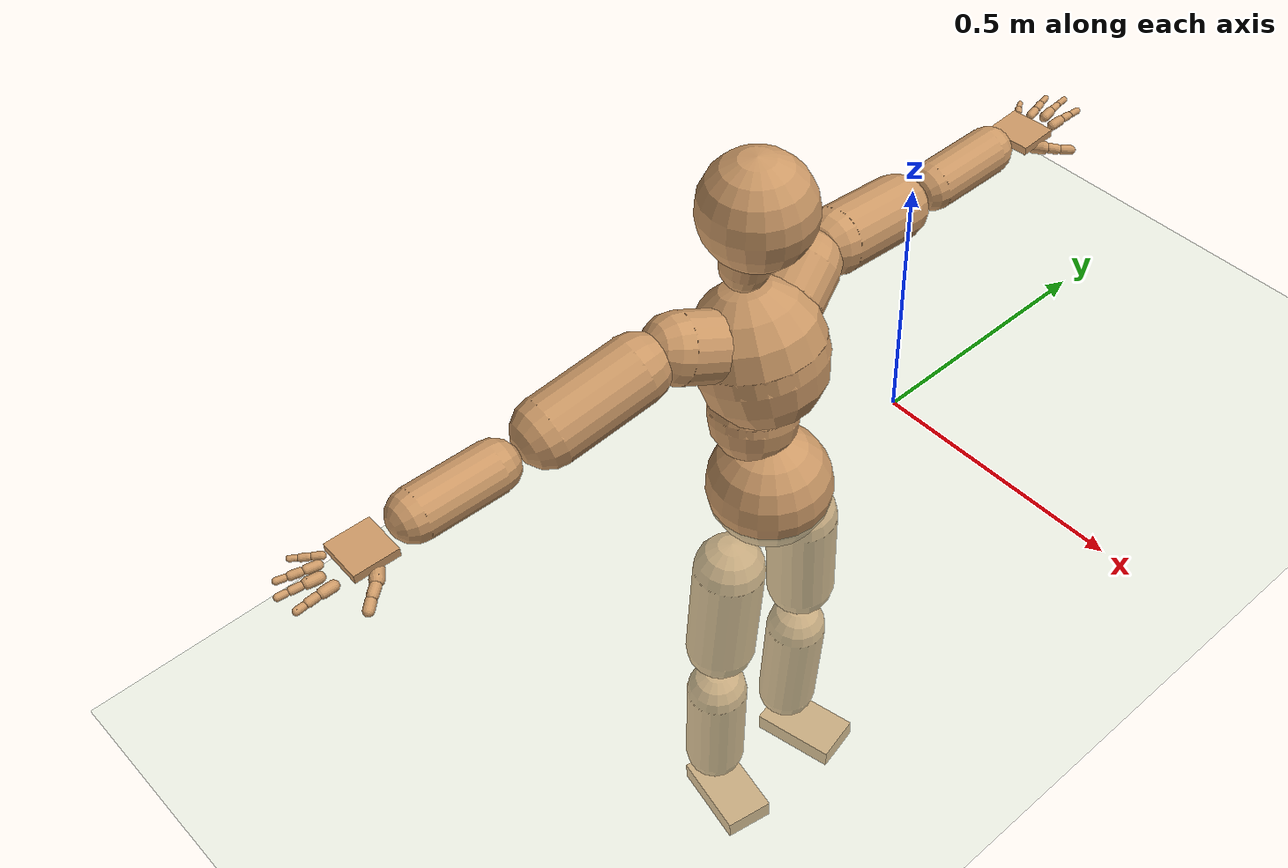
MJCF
<mujoco model="humanoid">
  <compiler coordinate="local" angle="radian"/>
  <default>
    <joint damping="0.0" armature="0.01" stiffness="0.0" limited="true"/>
    <geom conaffinity="1" condim="3" contype="7" margin="0.001" rgba="0.8 0.6 .4 1"/>
  </default>
  <asset>
    <texture type="skybox" builtin="gradient" rgb1=".4 .5 .6" rgb2="0 0 0" width="100" height="100"/>
    <texture builtin="flat" height="1278" mark="cross" markrgb="1 1 1" name="texgeom" random="0.01" rgb1="0.8 0.6 0.4" rgb2="0.8 0.6 0.4" type="cube" width="127"/>
    <texture builtin="checker" height="100" name="texplane" rgb1="0 0 0" rgb2="0.8 0.8 0.8" type="2d" width="100"/>
    <material name="MatPlane" reflectance="0.5" shininess="1" specular="1" texrepeat="60 60" texture="texplane"/>
    <material name="geom" texture="texgeom" texuniform="true"/>
  </asset>
  <worldbody>
    <light cutoff="100" diffuse="1 1 1" dir="-0 0 -1.3" directional="true" exponent="1" pos="0 0 1.3" specular=".1 .1 .1"/>
    <geom conaffinity="1" condim="3" name="floor" pos="0 0 0" rgba="0.8 0.9 0.8 1" size="100 100 .2" type="plane" material="MatPlane"/>
    <body name="Pelvis" pos="0.0008 -0.3259 0.0243">
      <freejoint name="Pelvis"/>
      <geom type="sphere" contype="1" conaffinity="1" density="500" size="0.1165" pos="0.0000 0.0000 0.0000" name="Pelvis"/>
      <body name="L_Hip" pos="-0.0027 0.0884 -0.0902">
        <joint name="L_Hip_x" type="hinge" pos="0 0 0" axis="1 0 0" stiffness="800" damping="80" armature="0.02" range="-180.0000 180.0000"/>
        <joint name="L_Hip_y" type="hinge" pos="0 0 0" axis="0 1 0" stiffness="800" damping="80" armature="0.02" range="-180.0000 180.0000"/>
        <joint name="L_Hip_z" type="hinge" pos="0 0 0" axis="0 0 1" stiffness="800" damping="80" armature="0.02" range="-180.0000 180.0000"/>
        <geom type="capsule" contype="1" conaffinity="1" density="500" fromto="-0.0047 0.0051 -0.0770 -0.0188 0.0205 -0.3082" size="0.0686" name="L_Hip"/>
        <body name="L_Knee" pos="-0.0235 0.0256 -0.3852">
          <joint name="L_Knee_x" type="hinge" pos="0 0 0" axis="1 0 0" stiffness="800" damping="80" armature="0.02" range="-180.0000 180.0000"/>
          <joint name="L_Knee_y" type="hinge" pos="0 0 0" axis="0 1 0" stiffness="800" damping="80" armature="0.02" range="-180.0000 180.0000"/>
          <joint name="L_Knee_z" type="hinge" pos="0 0 0" axis="0 0 1" stiffness="800" damping="80" armature="0.02" range="-180.0000 180.0000"/>
          <geom type="capsule" contype="1" conaffinity="1" density="500" fromto="-0.0060 -0.0020 -0.0820 -0.0238 -0.0079 -0.3278" size="0.0614" name="L_Knee"/>
          <body name="L_Ankle" pos="-0.0298 -0.0098 -0.4098">
            <joint name="L_Ankle_x" type="hinge" pos="0 0 0" axis="1 0 0" stiffness="800" damping="80" armature="0.02" range="-180.0000 180.0000"/>
            <joint name="L_Ankle_y" type="hinge" pos="0 0 0" axis="0 1 0" stiffness="800" damping="80" armature="0.02" range="-180.0000 180.0000"/>
            <joint name="L_Ankle_z" type="hinge" pos="0 0 0" axis="0 0 1" stiffness="800" damping="80" armature="0.02" range="-180.0000 180.0000"/>
            <geom type="box" contype="1" conaffinity="1" density="500" pos="0.0559 0.0122 -0.0220" size="0.0888 0.0502 0.0215" quat="0.9942 0.0000 0.0000 0.1075" name="L_Ankle"/>
            <body name="L_Toe" pos="0.1119 0.0245 -0.044">
              <joint name="L_Toe_x" type="hinge" pos="0 0 0" axis="1 0 0" stiffness="500" damping="50" armature="0.02" range="-180.0000 180.0000"/>
              <joint name="L_Toe_y" type="hinge" pos="0 0 0" axis="0 1 0" stiffness="500" damping="50" armature="0.02" range="-180.0000 180.0000"/>
              <joint name="L_Toe_z" type="hinge" pos="0 0 0" axis="0 0 1" stiffness="500" damping="50" armature="0.02" range="-180.0000 180.0000"/>
              <geom type="box" contype="1" conaffinity="1" density="500" pos="0.0000 0.0000 0.0219" size="0.001 0.0024 0.0011" quat="0.9935 0.0000 0.0000 0.1140" name="L_Toe"/>
            </body>
          </body>
        </body>
      </body>
      <body name="R_Hip" pos="-0.0039 -0.0877 -0.096">
        <joint name="R_Hip_x" type="hinge" pos="0 0 0" axis="1 0 0" stiffness="800" damping="80" armature="0.02" range="-180.0000 180.0000"/>
        <joint name="R_Hip_y" type="hinge" pos="0 0 0" axis="0 1 0" stiffness="800" damping="80" armature="0.02" range="-180.0000 180.0000"/>
        <joint name="R_Hip_z" type="hinge" pos="0 0 0" axis="0 0 1" stiffness="800" damping="80" armature="0.02" range="-180.0000 180.0000"/>
        <geom type="capsule" contype="1" conaffinity="1" density="500" fromto="-0.0033 -0.0061 -0.0764 -0.0133 -0.0242 -0.3055" size="0.0684" name="R_Hip"/>
        <body name="R_Knee" pos="-0.0166 -0.0303 -0.3819">
          <joint name="R_Knee_x" type="hinge" pos="0 0 0" axis="1 0 0" stiffness="800" damping="80" armature="0.02" range="-180.0000 180.0000"/>
          <joint name="R_Knee_y" type="hinge" pos="0 0 0" axis="0 1 0" stiffness="800" damping="80" armature="0.02" range="-180.0000 180.0000"/>
          <joint name="R_Knee_z" type="hinge" pos="0 0 0" axis="0 0 1" stiffness="800" damping="80" armature="0.02" range="-180.0000 180.0000"/>
          <geom type="capsule" contype="1" conaffinity="1" density="500" fromto="-0.0054 0.0009 -0.0801 -0.0215 0.0035 -0.3206" size="0.0614" name="R_Knee"/>
          <body name="R_Ankle" pos="-0.0268 0.0044 -0.4007">
            <joint name="R_Ankle_x" type="hinge" pos="0 0 0" axis="1 0 0" stiffness="800" damping="80" armature="0.02" range="-180.0000 180.0000"/>
            <joint name="R_Ankle_y" type="hinge" pos="0 0 0" axis="0 1 0" stiffness="800" damping="80" armature="0.02" range="-180.0000 180.0000"/>
            <joint name="R_Ankle_z" type="hinge" pos="0 0 0" axis="0 0 1" stiffness="800" damping="80" armature="0.02" range="-180.0000 180.0000"/>
            <geom type="box" contype="1" conaffinity="1" density="500" pos="0.0530 -0.0099 -0.0235" size="0.0888 0.0502 0.0215" quat="0.9957 0.0000 0.0000 -0.0922" name="R_Ankle"/>
            <body name="R_Toe" pos="0.1061 -0.0198 -0.047">
              <joint name="R_Toe_x" type="hinge" pos="0 0 0" axis="1 0 0" stiffness="500" damping="50" armature="0.02" range="-180.0000 180.0000"/>
              <joint name="R_Toe_y" type="hinge" pos="0 0 0" axis="0 1 0" stiffness="500" damping="50" armature="0.02" range="-180.0000 180.0000"/>
              <joint name="R_Toe_z" type="hinge" pos="0 0 0" axis="0 0 1" stiffness="500" damping="50" armature="0.02" range="-180.0000 180.0000"/>
              <geom type="box" contype="1" conaffinity="1" density="500" pos="0.0000 0.0000 0.0233" size="0.001 0.0024 0.0011" quat="0.9967 0.0000 0.0000 -0.0816" name="R_Toe"/>
            </body>
          </body>
        </body>
      </body>
      <body name="Torso" pos="-0.0355 -0.0071 0.1068">
        <joint name="Torso_x" type="hinge" pos="0 0 0" axis="1 0 0" stiffness="1000" damping="100" armature="0.02" range="-180.0000 180.0000"/>
        <joint name="Torso_y" type="hinge" pos="0 0 0" axis="0 1 0" stiffness="1000" damping="100" armature="0.02" range="-180.0000 180.0000"/>
        <joint name="Torso_z" type="hinge" pos="0 0 0" axis="0 0 1" stiffness="1000" damping="100" armature="0.02" range="-180.0000 180.0000"/>
        <geom type="capsule" contype="1" conaffinity="1" density="500" fromto="-0.0090 0.0101 0.0516 -0.0060 0.0067 0.0344" size="0.0821" name="Torso"/>
        <body name="Spine" pos="-0.0149 0.0168 0.0859">
          <joint name="Spine_x" type="hinge" pos="0 0 0" axis="1 0 0" stiffness="1000" damping="100" armature="0.02" range="-180.0000 180.0000"/>
          <joint name="Spine_y" type="hinge" pos="0 0 0" axis="0 1 0" stiffness="1000" damping="100" armature="0.02" range="-180.0000 180.0000"/>
          <joint name="Spine_z" type="hinge" pos="0 0 0" axis="0 0 1" stiffness="1000" damping="100" armature="0.02" range="-180.0000 180.0000"/>
          <geom type="capsule" contype="1" conaffinity="1" density="500" fromto="0.0276 -0.0061 0.0233 0.0184 -0.0041 0.0155" size="0.0678" name="Spine"/>
          <body name="Chest" pos="0.046 -0.0101 0.0388">
            <joint name="Chest_x" type="hinge" pos="0 0 0" axis="1 0 0" stiffness="1000" damping="100" armature="0.02" range="-180.0000 180.0000"/>
            <joint name="Chest_y" type="hinge" pos="0 0 0" axis="0 1 0" stiffness="1000" damping="100" armature="0.02" range="-180.0000 180.0000"/>
            <joint name="Chest_z" type="hinge" pos="0 0 0" axis="0 0 1" stiffness="1000" damping="100" armature="0.02" range="-180.0000 180.0000"/>
            <geom type="capsule" contype="1" conaffinity="1" density="500" fromto="-0.0239 -0.0019 0.0917 -0.0159 -0.0013 0.0611" size="0.1191" name="Chest"/>
            <body name="Neck" pos="-0.0571 -0.0067 0.2148">
              <joint name="Neck_x" type="hinge" pos="0 0 0" axis="1 0 0" stiffness="500" damping="50" armature="0.02" range="-180.0000 180.0000"/>
              <joint name="Neck_y" type="hinge" pos="0 0 0" axis="0 1 0" stiffness="500" damping="50" armature="0.02" range="-180.0000 180.0000"/>
              <joint name="Neck_z" type="hinge" pos="0 0 0" axis="0 0 1" stiffness="500" damping="50" armature="0.02" range="-180.0000 180.0000"/>
              <geom type="capsule" contype="1" conaffinity="1" density="500" fromto="0.0055 0.0019 0.0301 0.0219 0.0075 0.1204" size="0.0435" name="Neck"/>
              <body name="Head" pos="0.0273 0.0093 0.1505">
                <joint name="Head_x" type="hinge" pos="0 0 0" axis="1 0 0" stiffness="500" damping="50" armature="0.02" range="-180.0000 180.0000"/>
                <joint name="Head_y" type="hinge" pos="0 0 0" axis="0 1 0" stiffness="500" damping="50" armature="0.02" range="-180.0000 180.0000"/>
                <joint name="Head_z" type="hinge" pos="0 0 0" axis="0 0 1" stiffness="500" damping="50" armature="0.02" range="-180.0000 180.0000"/>
                <geom type="sphere" contype="1" conaffinity="1" density="500" size="0.0991" pos="0.0000 0.0000 0.0000" name="Head"/>
              </body>
            </body>
            <body name="L_Thorax" pos="-0.027 0.0597 0.1243">
              <joint name="L_Thorax_x" type="hinge" pos="0 0 0" axis="1 0 0" stiffness="500" damping="50" armature="0.02" range="-180.0000 180.0000"/>
              <joint name="L_Thorax_y" type="hinge" pos="0 0 0" axis="0 1 0" stiffness="500" damping="50" armature="0.02" range="-180.0000 180.0000"/>
              <joint name="L_Thorax_z" type="hinge" pos="0 0 0" axis="0 0 1" stiffness="500" damping="50" armature="0.02" range="-180.0000 180.0000"/>
              <geom type="capsule" contype="1" conaffinity="1" density="500" fromto="-0.0070 0.0199 0.0089 -0.0279 0.0797 0.0354" size="0.0609" name="L_Thorax"/>
              <body name="L_Shoulder" pos="-0.0349 0.0997 0.0443">
                <joint name="L_Shoulder_x" type="hinge" pos="0 0 0" axis="1 0 0" stiffness="500" damping="50" armature="0.02" range="-180.0000 180.0000"/>
                <joint name="L_Shoulder_y" type="hinge" pos="0 0 0" axis="0 1 0" stiffness="500" damping="50" armature="0.02" range="-180.0000 180.0000"/>
                <joint name="L_Shoulder_z" type="hinge" pos="0 0 0" axis="0 0 1" stiffness="500" damping="50" armature="0.02" range="-180.0000 180.0000"/>
                <geom type="capsule" contype="1" conaffinity="1" density="500" fromto="-0.0063 0.0577 -0.0117 -0.0250 0.2306 -0.0469" size="0.0604" name="L_Shoulder"/>
                <body name="L_Elbow" pos="-0.0313 0.2883 -0.0587">
                  <joint name="L_Elbow_x" type="hinge" pos="0 0 0" axis="1 0 0" stiffness="500" damping="50" armature="0.02" range="-720.0000 720.0000"/>
                  <joint name="L_Elbow_y" type="hinge" pos="0 0 0" axis="0 1 0" stiffness="500" damping="50" armature="0.02" range="-720.0000 720.0000"/>
                  <joint name="L_Elbow_z" type="hinge" pos="0 0 0" axis="0 0 1" stiffness="500" damping="50" armature="0.02" range="-720.0000 720.0000"/>
                  <geom type="capsule" contype="1" conaffinity="1" density="500" fromto="0.0014 0.0477 0.0018 0.0056 0.1906 0.0073" size="0.045" name="L_Elbow"/>
                  <body name="L_Wrist" pos="0.007 0.2383 0.0091">
                    <joint name="L_Wrist_x" type="hinge" pos="0 0 0" axis="1 0 0" stiffness="300" damping="30" armature="0.02" range="-180.0000 180.0000"/>
                    <joint name="L_Wrist_y" type="hinge" pos="0 0 0" axis="0 1 0" stiffness="300" damping="30" armature="0.02" range="-180.0000 180.0000"/>
                    <joint name="L_Wrist_z" type="hinge" pos="0 0 0" axis="0 0 1" stiffness="300" damping="30" armature="0.02" range="-180.0000 180.0000"/>
                    <geom type="box" contype="1" conaffinity="1" density="500" pos="-0.0023 0.0456 -0.0086" size="0.0395 0.0437 0.0078" quat="0.7249 0.0000 0.0000 -0.6888" name="L_Wrist"/>
                    <body name="L_Index1" pos="0.0204 0.1066 -0.0145">
                      <joint name="L_Index1_x" type="hinge" pos="0 0 0" axis="1 0 0" stiffness="100" damping="10" armature="0.02" range="-180.0000 180.0000"/>
                      <joint name="L_Index1_y" type="hinge" pos="0 0 0" axis="0 1 0" stiffness="100" damping="10" armature="0.02" range="-180.0000 180.0000"/>
                      <joint name="L_Index1_z" type="hinge" pos="0 0 0" axis="0 0 1" stiffness="100" damping="10" armature="0.02" range="-180.0000 180.0000"/>
                      <geom type="capsule" contype="1" conaffinity="1" density="500" fromto="0.0005 0.0064 0.0006 0.0020 0.0254 0.0026" size="0.0094" name="L_Index1"/>
                      <body name="L_Index2" pos="0.0024 0.0318 0.0032">
                        <joint name="L_Index2_x" type="hinge" pos="0 0 0" axis="1 0 0" stiffness="100" damping="10" armature="0.02" range="-180.0000 180.0000"/>
                        <joint name="L_Index2_y" type="hinge" pos="0 0 0" axis="0 1 0" stiffness="100" damping="10" armature="0.02" range="-180.0000 180.0000"/>
                        <joint name="L_Index2_z" type="hinge" pos="0 0 0" axis="0 0 1" stiffness="100" damping="10" armature="0.02" range="-180.0000 180.0000"/>
                        <geom type="capsule" contype="1" conaffinity="1" density="500" fromto="0.0001 0.0045 -0.0003 0.0002 0.0179 -0.0010" size="0.0077" name="L_Index2"/>
                        <body name="L_Index3" pos="0.0003 0.0224 -0.0013">
                          <joint name="L_Index3_x" type="hinge" pos="0 0 0" axis="1 0 0" stiffness="100" damping="10" armature="0.02" range="-180.0000 180.0000"/>
                          <joint name="L_Index3_y" type="hinge" pos="0 0 0" axis="0 1 0" stiffness="100" damping="10" armature="0.02" range="-180.0000 180.0000"/>
                          <joint name="L_Index3_z" type="hinge" pos="0 0 0" axis="0 0 1" stiffness="100" damping="10" armature="0.02" range="-180.0000 180.0000"/>
                          <geom type="capsule" contype="1" conaffinity="1" density="500" fromto="0.0005 0.0049 0.0001 0.0018 0.0195 0.0006" size="0.0064" name="L_Index3"/>
                        </body>
                      </body>
                    </body>
                    <body name="L_Middle1" pos="-0.0033 0.1139 -0.0117">
                      <joint name="L_Middle1_x" type="hinge" pos="0 0 0" axis="1 0 0" stiffness="100" damping="10" armature="0.02" range="-180.0000 180.0000"/>
                      <joint name="L_Middle1_y" type="hinge" pos="0 0 0" axis="0 1 0" stiffness="100" damping="10" armature="0.02" range="-180.0000 180.0000"/>
                      <joint name="L_Middle1_z" type="hinge" pos="0 0 0" axis="0 0 1" stiffness="100" damping="10" armature="0.02" range="-180.0000 180.0000"/>
                      <geom type="capsule" contype="1" conaffinity="1" density="500" fromto="-0.0008 0.0060 0.0004 -0.0033 0.0241 0.0014" size="0.0096" name="L_Middle1"/>
                      <body name="L_Middle2" pos="-0.0041 0.0301 0.0018">
                        <joint name="L_Middle2_x" type="hinge" pos="0 0 0" axis="1 0 0" stiffness="100" damping="10" armature="0.02" range="-180.0000 180.0000"/>
                        <joint name="L_Middle2_y" type="hinge" pos="0 0 0" axis="0 1 0" stiffness="100" damping="10" armature="0.02" range="-180.0000 180.0000"/>
                        <joint name="L_Middle2_z" type="hinge" pos="0 0 0" axis="0 0 1" stiffness="100" damping="10" armature="0.02" range="-180.0000 180.0000"/>
                        <geom type="capsule" contype="1" conaffinity="1" density="500" fromto="-0.0008 0.0046 -0.0001 -0.0031 0.0186 -0.0005" size="0.007" name="L_Middle2"/>
                        <body name="L_Middle3" pos="-0.0039 0.0232 -0.0006">
                          <joint name="L_Middle3_x" type="hinge" pos="0 0 0" axis="1 0 0" stiffness="100" damping="10" armature="0.02" range="-180.0000 180.0000"/>
                          <joint name="L_Middle3_y" type="hinge" pos="0 0 0" axis="0 1 0" stiffness="100" damping="10" armature="0.02" range="-180.0000 180.0000"/>
                          <joint name="L_Middle3_z" type="hinge" pos="0 0 0" axis="0 0 1" stiffness="100" damping="10" armature="0.02" range="-180.0000 180.0000"/>
                          <geom type="capsule" contype="1" conaffinity="1" density="500" fromto="-0.0004 0.0050 0.0003 -0.0015 0.0202 0.0011" size="0.0059" name="L_Middle3"/>
                        </body>
                      </body>
                    </body>
                    <body name="L_Pinky1" pos="-0.0418 0.0885 -0.021">
                      <joint name="L_Pinky1_x" type="hinge" pos="0 0 0" axis="1 0 0" stiffness="100" damping="10" armature="0.02" range="-180.0000 180.0000"/>
                      <joint name="L_Pinky1_y" type="hinge" pos="0 0 0" axis="0 1 0" stiffness="100" damping="10" armature="0.02" range="-180.0000 180.0000"/>
                      <joint name="L_Pinky1_z" type="hinge" pos="0 0 0" axis="0 0 1" stiffness="100" damping="10" armature="0.02" range="-180.0000 180.0000"/>
                      <geom type="capsule" contype="1" conaffinity="1" density="500" fromto="-0.0024 0.0030 -0.0001 -0.0096 0.0120 -0.0005" size="0.0067" name="L_Pinky1"/>
                      <body name="L_Pinky2" pos="-0.012 0.0151 -0.0006">
                        <joint name="L_Pinky2_x" type="hinge" pos="0 0 0" axis="1 0 0" stiffness="100" damping="10" armature="0.02" range="-180.0000 180.0000"/>
                        <joint name="L_Pinky2_y" type="hinge" pos="0 0 0" axis="0 1 0" stiffness="100" damping="10" armature="0.02" range="-180.0000 180.0000"/>
                        <joint name="L_Pinky2_z" type="hinge" pos="0 0 0" axis="0 0 1" stiffness="100" damping="10" armature="0.02" range="-180.0000 180.0000"/>
                        <geom type="capsule" contype="1" conaffinity="1" density="500" fromto="-0.0023 0.0030 -0.0002 -0.0092 0.0121 -0.0009" size="0.0065" name="L_Pinky2"/>
                        <body name="L_Pinky3" pos="-0.0115 0.0151 -0.0011">
                          <joint name="L_Pinky3_x" type="hinge" pos="0 0 0" axis="1 0 0" stiffness="100" damping="10" armature="0.02" range="-180.0000 180.0000"/>
                          <joint name="L_Pinky3_y" type="hinge" pos="0 0 0" axis="0 1 0" stiffness="100" damping="10" armature="0.02" range="-180.0000 180.0000"/>
                          <joint name="L_Pinky3_z" type="hinge" pos="0 0 0" axis="0 0 1" stiffness="100" damping="10" armature="0.02" range="-180.0000 180.0000"/>
                          <geom type="capsule" contype="1" conaffinity="1" density="500" fromto="-0.0019 0.0034 0.0002 -0.0076 0.0137 0.0007" size="0.0049" name="L_Pinky3"/>
                        </body>
                      </body>
                    </body>
                    <body name="L_Ring1" pos="-0.0264 0.1019 -0.0152">
                      <joint name="L_Ring1_x" type="hinge" pos="0 0 0" axis="1 0 0" stiffness="100" damping="10" armature="0.02" range="-180.0000 180.0000"/>
                      <joint name="L_Ring1_y" type="hinge" pos="0 0 0" axis="0 1 0" stiffness="100" damping="10" armature="0.02" range="-180.0000 180.0000"/>
                      <joint name="L_Ring1_z" type="hinge" pos="0 0 0" axis="0 0 1" stiffness="100" damping="10" armature="0.02" range="-180.0000 180.0000"/>
                      <geom type="capsule" contype="1" conaffinity="1" density="500" fromto="-0.0011 0.0055 0.0004 -0.0045 0.0222 0.0015" size="0.0082" name="L_Ring1"/>
                      <body name="L_Ring2" pos="-0.0056 0.0277 0.0019">
                        <joint name="L_Ring2_x" type="hinge" pos="0 0 0" axis="1 0 0" stiffness="100" damping="10" armature="0.02" range="-180.0000 180.0000"/>
                        <joint name="L_Ring2_y" type="hinge" pos="0 0 0" axis="0 1 0" stiffness="100" damping="10" armature="0.02" range="-180.0000 180.0000"/>
                        <joint name="L_Ring2_z" type="hinge" pos="0 0 0" axis="0 0 1" stiffness="100" damping="10" armature="0.02" range="-180.0000 180.0000"/>
                        <geom type="capsule" contype="1" conaffinity="1" density="500" fromto="-0.0014 0.0045 -0.0002 -0.0058 0.0179 -0.0009" size="0.0074" name="L_Ring2"/>
                        <body name="L_Ring3" pos="-0.0072 0.0224 -0.0012">
                          <joint name="L_Ring3_x" type="hinge" pos="0 0 0" axis="1 0 0" stiffness="100" damping="10" armature="0.02" range="-180.0000 180.0000"/>
                          <joint name="L_Ring3_y" type="hinge" pos="0 0 0" axis="0 1 0" stiffness="100" damping="10" armature="0.02" range="-180.0000 180.0000"/>
                          <joint name="L_Ring3_z" type="hinge" pos="0 0 0" axis="0 0 1" stiffness="100" damping="10" armature="0.02" range="-180.0000 180.0000"/>
                          <geom type="capsule" contype="1" conaffinity="1" density="500" fromto="-0.0010 0.0049 0.0002 -0.0042 0.0195 0.0007" size="0.0057" name="L_Ring3"/>
                        </body>
                      </body>
                    </body>
                    <body name="L_Thumb1" pos="0.0278 0.0446 -0.0238">
                      <joint name="L_Thumb1_x" type="hinge" pos="0 0 0" axis="1 0 0" stiffness="100" damping="10" armature="0.02" range="-180.0000 180.0000"/>
                      <joint name="L_Thumb1_y" type="hinge" pos="0 0 0" axis="0 1 0" stiffness="100" damping="10" armature="0.02" range="-180.0000 180.0000"/>
                      <joint name="L_Thumb1_z" type="hinge" pos="0 0 0" axis="0 0 1" stiffness="100" damping="10" armature="0.02" range="-180.0000 180.0000"/>
                      <geom type="capsule" contype="1" conaffinity="1" density="500" fromto="0.0048 0.0034 0.0002 0.0191 0.0137 0.0009" size="0.0122" name="L_Thumb1"/>
                      <body name="L_Thumb2" pos="0.0239 0.0172 0.0011">
                        <joint name="L_Thumb2_x" type="hinge" pos="0 0 0" axis="1 0 0" stiffness="100" damping="10" armature="0.02" range="-180.0000 180.0000"/>
                        <joint name="L_Thumb2_y" type="hinge" pos="0 0 0" axis="0 1 0" stiffness="100" damping="10" armature="0.02" range="-180.0000 180.0000"/>
                        <joint name="L_Thumb2_z" type="hinge" pos="0 0 0" axis="0 0 1" stiffness="100" damping="10" armature="0.02" range="-180.0000 180.0000"/>
                        <geom type="capsule" contype="1" conaffinity="1" density="500" fromto="0.0029 0.0041 -0.0012 0.0115 0.0163 -0.0048" size="0.0095" name="L_Thumb2"/>
                        <body name="L_Thumb3" pos="0.0144 0.0203 -0.006">
                          <joint name="L_Thumb3_x" type="hinge" pos="0 0 0" axis="1 0 0" stiffness="100" damping="10" armature="0.02" range="-180.0000 180.0000"/>
                          <joint name="L_Thumb3_y" type="hinge" pos="0 0 0" axis="0 1 0" stiffness="100" damping="10" armature="0.02" range="-180.0000 180.0000"/>
                          <joint name="L_Thumb3_z" type="hinge" pos="0 0 0" axis="0 0 1" stiffness="100" damping="10" armature="0.02" range="-180.0000 180.0000"/>
                          <geom type="capsule" contype="1" conaffinity="1" density="500" fromto="0.0033 0.0045 -0.0008 0.0131 0.0179 -0.0032" size="0.0089" name="L_Thumb3"/>
                        </body>
                      </body>
                    </body>
                  </body>
                </body>
              </body>
            </body>
            <body name="R_Thorax" pos="-0.0355 -0.0628 0.1194">
              <joint name="R_Thorax_x" type="hinge" pos="0 0 0" axis="1 0 0" stiffness="500" damping="50" armature="0.02" range="-180.0000 180.0000"/>
              <joint name="R_Thorax_y" type="hinge" pos="0 0 0" axis="0 1 0" stiffness="500" damping="50" armature="0.02" range="-180.0000 180.0000"/>
              <joint name="R_Thorax_z" type="hinge" pos="0 0 0" axis="0 0 1" stiffness="500" damping="50" armature="0.02" range="-180.0000 180.0000"/>
              <geom type="capsule" contype="1" conaffinity="1" density="500" fromto="-0.0050 -0.0217 0.0089 -0.0201 -0.0868 0.0356" size="0.0621" name="R_Thorax"/>
              <body name="R_Shoulder" pos="-0.0252 -0.1085 0.0445">
                <joint name="R_Shoulder_x" type="hinge" pos="0 0 0" axis="1 0 0" stiffness="500" damping="50" armature="0.02" range="-180.0000 180.0000"/>
                <joint name="R_Shoulder_y" type="hinge" pos="0 0 0" axis="0 1 0" stiffness="500" damping="50" armature="0.02" range="-180.0000 180.0000"/>
                <joint name="R_Shoulder_z" type="hinge" pos="0 0 0" axis="0 0 1" stiffness="500" damping="50" armature="0.02" range="-180.0000 180.0000"/>
                <geom type="capsule" contype="1" conaffinity="1" density="500" fromto="-0.0049 -0.0556 -0.0102 -0.0195 -0.2226 -0.0408" size="0.0609" name="R_Shoulder"/>
                <body name="R_Elbow" pos="-0.0244 -0.2782 -0.0509">
                  <joint name="R_Elbow_x" type="hinge" pos="0 0 0" axis="1 0 0" stiffness="500" damping="50" armature="0.02" range="-720.0000 720.0000"/>
                  <joint name="R_Elbow_y" type="hinge" pos="0 0 0" axis="0 1 0" stiffness="500" damping="50" armature="0.02" range="-720.0000 720.0000"/>
                  <joint name="R_Elbow_z" type="hinge" pos="0 0 0" axis="0 0 1" stiffness="500" damping="50" armature="0.02" range="-720.0000 720.0000"/>
                  <geom type="capsule" contype="1" conaffinity="1" density="500" fromto="-0.0006 -0.0477 0.0010 -0.0024 -0.1907 0.0040" size="0.0452" name="R_Elbow"/>
                  <body name="R_Wrist" pos="-0.003 -0.2384 0.005">
                    <joint name="R_Wrist_x" type="hinge" pos="0 0 0" axis="1 0 0" stiffness="300" damping="30" armature="0.02" range="-180.0000 180.0000"/>
                    <joint name="R_Wrist_y" type="hinge" pos="0 0 0" axis="0 1 0" stiffness="300" damping="30" armature="0.02" range="-180.0000 180.0000"/>
                    <joint name="R_Wrist_z" type="hinge" pos="0 0 0" axis="0 0 1" stiffness="300" damping="30" armature="0.02" range="-180.0000 180.0000"/>
                    <geom type="box" contype="1" conaffinity="1" density="500" pos="-0.0014 -0.0449 -0.0081" size="0.0395 0.0407 0.0081" quat="0.7182 0.0000 0.0000 0.6958" name="R_Wrist"/>
                    <body name="R_Index1" pos="0.0222 -0.1052 -0.0135">
                      <joint name="R_Index1_x" type="hinge" pos="0 0 0" axis="1 0 0" stiffness="100" damping="10" armature="0.02" range="-180.0000 180.0000"/>
                      <joint name="R_Index1_y" type="hinge" pos="0 0 0" axis="0 1 0" stiffness="100" damping="10" armature="0.02" range="-180.0000 180.0000"/>
                      <joint name="R_Index1_z" type="hinge" pos="0 0 0" axis="0 0 1" stiffness="100" damping="10" armature="0.02" range="-180.0000 180.0000"/>
                      <geom type="capsule" contype="1" conaffinity="1" density="500" fromto="0.0005 -0.0064 0.0006 0.0020 -0.0254 0.0026" size="0.0094" name="R_Index1"/>
                      <body name="R_Index2" pos="0.0024 -0.0318 0.0032">
                        <joint name="R_Index2_x" type="hinge" pos="0 0 0" axis="1 0 0" stiffness="100" damping="10" armature="0.02" range="-180.0000 180.0000"/>
                        <joint name="R_Index2_y" type="hinge" pos="0 0 0" axis="0 1 0" stiffness="100" damping="10" armature="0.02" range="-180.0000 180.0000"/>
                        <joint name="R_Index2_z" type="hinge" pos="0 0 0" axis="0 0 1" stiffness="100" damping="10" armature="0.02" range="-180.0000 180.0000"/>
                        <geom type="capsule" contype="1" conaffinity="1" density="500" fromto="0.0001 -0.0045 -0.0003 0.0002 -0.0179 -0.0010" size="0.0077" name="R_Index2"/>
                        <body name="R_Index3" pos="0.0003 -0.0224 -0.0013">
                          <joint name="R_Index3_x" type="hinge" pos="0 0 0" axis="1 0 0" stiffness="100" damping="10" armature="0.02" range="-180.0000 180.0000"/>
                          <joint name="R_Index3_y" type="hinge" pos="0 0 0" axis="0 1 0" stiffness="100" damping="10" armature="0.02" range="-180.0000 180.0000"/>
                          <joint name="R_Index3_z" type="hinge" pos="0 0 0" axis="0 0 1" stiffness="100" damping="10" armature="0.02" range="-180.0000 180.0000"/>
                          <geom type="capsule" contype="1" conaffinity="1" density="500" fromto="0.0005 -0.0041 0.0001 0.0018 -0.0163 0.0006" size="0.0066" name="R_Index3"/>
                        </body>
                      </body>
                    </body>
                    <body name="R_Middle1" pos="-0.0015 -0.1125 -0.0107">
                      <joint name="R_Middle1_x" type="hinge" pos="0 0 0" axis="1 0 0" stiffness="100" damping="10" armature="0.02" range="-180.0000 180.0000"/>
                      <joint name="R_Middle1_y" type="hinge" pos="0 0 0" axis="0 1 0" stiffness="100" damping="10" armature="0.02" range="-180.0000 180.0000"/>
                      <joint name="R_Middle1_z" type="hinge" pos="0 0 0" axis="0 0 1" stiffness="100" damping="10" armature="0.02" range="-180.0000 180.0000"/>
                      <geom type="capsule" contype="1" conaffinity="1" density="500" fromto="-0.0008 -0.0060 0.0004 -0.0033 -0.0241 0.0014" size="0.0096" name="R_Middle1"/>
                      <body name="R_Middle2" pos="-0.0041 -0.0301 0.0018">
                        <joint name="R_Middle2_x" type="hinge" pos="0 0 0" axis="1 0 0" stiffness="100" damping="10" armature="0.02" range="-180.0000 180.0000"/>
                        <joint name="R_Middle2_y" type="hinge" pos="0 0 0" axis="0 1 0" stiffness="100" damping="10" armature="0.02" range="-180.0000 180.0000"/>
                        <joint name="R_Middle2_z" type="hinge" pos="0 0 0" axis="0 0 1" stiffness="100" damping="10" armature="0.02" range="-180.0000 180.0000"/>
                        <geom type="capsule" contype="1" conaffinity="1" density="500" fromto="-0.0008 -0.0046 -0.0001 -0.0031 -0.0186 -0.0005" size="0.007" name="R_Middle2"/>
                        <body name="R_Middle3" pos="-0.0039 -0.0232 -0.0006">
                          <joint name="R_Middle3_x" type="hinge" pos="0 0 0" axis="1 0 0" stiffness="100" damping="10" armature="0.02" range="-180.0000 180.0000"/>
                          <joint name="R_Middle3_y" type="hinge" pos="0 0 0" axis="0 1 0" stiffness="100" damping="10" armature="0.02" range="-180.0000 180.0000"/>
                          <joint name="R_Middle3_z" type="hinge" pos="0 0 0" axis="0 0 1" stiffness="100" damping="10" armature="0.02" range="-180.0000 180.0000"/>
                          <geom type="capsule" contype="1" conaffinity="1" density="500" fromto="-0.0004 -0.0042 0.0003 -0.0015 -0.0170 0.0011" size="0.0061" name="R_Middle3"/>
                        </body>
                      </body>
                    </body>
                    <body name="R_Pinky1" pos="-0.04 -0.0871 -0.02">
                      <joint name="R_Pinky1_x" type="hinge" pos="0 0 0" axis="1 0 0" stiffness="100" damping="10" armature="0.02" range="-180.0000 180.0000"/>
                      <joint name="R_Pinky1_y" type="hinge" pos="0 0 0" axis="0 1 0" stiffness="100" damping="10" armature="0.02" range="-180.0000 180.0000"/>
                      <joint name="R_Pinky1_z" type="hinge" pos="0 0 0" axis="0 0 1" stiffness="100" damping="10" armature="0.02" range="-180.0000 180.0000"/>
                      <geom type="capsule" contype="1" conaffinity="1" density="500" fromto="-0.0024 -0.0030 -0.0001 -0.0096 -0.0120 -0.0005" size="0.0067" name="R_Pinky1"/>
                      <body name="R_Pinky2" pos="-0.012 -0.0151 -0.0006">
                        <joint name="R_Pinky2_x" type="hinge" pos="0 0 0" axis="1 0 0" stiffness="100" damping="10" armature="0.02" range="-180.0000 180.0000"/>
                        <joint name="R_Pinky2_y" type="hinge" pos="0 0 0" axis="0 1 0" stiffness="100" damping="10" armature="0.02" range="-180.0000 180.0000"/>
                        <joint name="R_Pinky2_z" type="hinge" pos="0 0 0" axis="0 0 1" stiffness="100" damping="10" armature="0.02" range="-180.0000 180.0000"/>
                        <geom type="capsule" contype="1" conaffinity="1" density="500" fromto="-0.0023 -0.0030 -0.0002 -0.0092 -0.0121 -0.0009" size="0.0065" name="R_Pinky2"/>
                        <body name="R_Pinky3" pos="-0.0115 -0.0151 -0.0011">
                          <joint name="R_Pinky3_x" type="hinge" pos="0 0 0" axis="1 0 0" stiffness="100" damping="10" armature="0.02" range="-180.0000 180.0000"/>
                          <joint name="R_Pinky3_y" type="hinge" pos="0 0 0" axis="0 1 0" stiffness="100" damping="10" armature="0.02" range="-180.0000 180.0000"/>
                          <joint name="R_Pinky3_z" type="hinge" pos="0 0 0" axis="0 0 1" stiffness="100" damping="10" armature="0.02" range="-180.0000 180.0000"/>
                          <geom type="capsule" contype="1" conaffinity="1" density="500" fromto="-0.0019 -0.0026 0.0002 -0.0076 -0.0105 0.0007" size="0.0052" name="R_Pinky3"/>
                        </body>
                      </body>
                    </body>
                    <body name="R_Ring1" pos="-0.0246 -0.1005 -0.0142">
                      <joint name="R_Ring1_x" type="hinge" pos="0 0 0" axis="1 0 0" stiffness="100" damping="10" armature="0.02" range="-180.0000 180.0000"/>
                      <joint name="R_Ring1_y" type="hinge" pos="0 0 0" axis="0 1 0" stiffness="100" damping="10" armature="0.02" range="-180.0000 180.0000"/>
                      <joint name="R_Ring1_z" type="hinge" pos="0 0 0" axis="0 0 1" stiffness="100" damping="10" armature="0.02" range="-180.0000 180.0000"/>
                      <geom type="capsule" contype="1" conaffinity="1" density="500" fromto="-0.0011 -0.0055 0.0004 -0.0045 -0.0222 0.0015" size="0.0082" name="R_Ring1"/>
                      <body name="R_Ring2" pos="-0.0056 -0.0277 0.0019">
                        <joint name="R_Ring2_x" type="hinge" pos="0 0 0" axis="1 0 0" stiffness="100" damping="10" armature="0.02" range="-180.0000 180.0000"/>
                        <joint name="R_Ring2_y" type="hinge" pos="0 0 0" axis="0 1 0" stiffness="100" damping="10" armature="0.02" range="-180.0000 180.0000"/>
                        <joint name="R_Ring2_z" type="hinge" pos="0 0 0" axis="0 0 1" stiffness="100" damping="10" armature="0.02" range="-180.0000 180.0000"/>
                        <geom type="capsule" contype="1" conaffinity="1" density="500" fromto="-0.0014 -0.0045 -0.0002 -0.0058 -0.0179 -0.0009" size="0.0074" name="R_Ring2"/>
                        <body name="R_Ring3" pos="-0.0072 -0.0224 -0.0012">
                          <joint name="R_Ring3_x" type="hinge" pos="0 0 0" axis="1 0 0" stiffness="100" damping="10" armature="0.02" range="-180.0000 180.0000"/>
                          <joint name="R_Ring3_y" type="hinge" pos="0 0 0" axis="0 1 0" stiffness="100" damping="10" armature="0.02" range="-180.0000 180.0000"/>
                          <joint name="R_Ring3_z" type="hinge" pos="0 0 0" axis="0 0 1" stiffness="100" damping="10" armature="0.02" range="-180.0000 180.0000"/>
                          <geom type="capsule" contype="1" conaffinity="1" density="500" fromto="-0.0010 -0.0041 0.0002 -0.0042 -0.0163 0.0007" size="0.0059" name="R_Ring3"/>
                        </body>
                      </body>
                    </body>
                    <body name="R_Thumb1" pos="0.0296 -0.0432 -0.0228">
                      <joint name="R_Thumb1_x" type="hinge" pos="0 0 0" axis="1 0 0" stiffness="100" damping="10" armature="0.02" range="-180.0000 180.0000"/>
                      <joint name="R_Thumb1_y" type="hinge" pos="0 0 0" axis="0 1 0" stiffness="100" damping="10" armature="0.02" range="-180.0000 180.0000"/>
                      <joint name="R_Thumb1_z" type="hinge" pos="0 0 0" axis="0 0 1" stiffness="100" damping="10" armature="0.02" range="-180.0000 180.0000"/>
                      <geom type="capsule" contype="1" conaffinity="1" density="500" fromto="0.0048 -0.0034 0.0002 0.0191 -0.0137 0.0009" size="0.0122" name="R_Thumb1"/>
                      <body name="R_Thumb2" pos="0.0239 -0.0172 0.0011">
                        <joint name="R_Thumb2_x" type="hinge" pos="0 0 0" axis="1 0 0" stiffness="100" damping="10" armature="0.02" range="-180.0000 180.0000"/>
                        <joint name="R_Thumb2_y" type="hinge" pos="0 0 0" axis="0 1 0" stiffness="100" damping="10" armature="0.02" range="-180.0000 180.0000"/>
                        <joint name="R_Thumb2_z" type="hinge" pos="0 0 0" axis="0 0 1" stiffness="100" damping="10" armature="0.02" range="-180.0000 180.0000"/>
                        <geom type="capsule" contype="1" conaffinity="1" density="500" fromto="0.0029 -0.0041 -0.0012 0.0115 -0.0163 -0.0048" size="0.0095" name="R_Thumb2"/>
                        <body name="R_Thumb3" pos="0.0144 -0.0203 -0.006">
                          <joint name="R_Thumb3_x" type="hinge" pos="0 0 0" axis="1 0 0" stiffness="100" damping="10" armature="0.02" range="-180.0000 180.0000"/>
                          <joint name="R_Thumb3_y" type="hinge" pos="0 0 0" axis="0 1 0" stiffness="100" damping="10" armature="0.02" range="-180.0000 180.0000"/>
                          <joint name="R_Thumb3_z" type="hinge" pos="0 0 0" axis="0 0 1" stiffness="100" damping="10" armature="0.02" range="-180.0000 180.0000"/>
                          <geom type="capsule" contype="1" conaffinity="1" density="500" fromto="0.0033 -0.0037 -0.0008 0.0131 -0.0147 -0.0032" size="0.0092" name="R_Thumb3"/>
                        </body>
                      </body>
                    </body>
                  </body>
                </body>
              </body>
            </body>
          </body>
        </body>
      </body>
    </body>
  </worldbody>
  <actuator>
    <motor name="L_Hip_x" joint="L_Hip_x" gear="500"/>
    <motor name="L_Hip_y" joint="L_Hip_y" gear="500"/>
    <motor name="L_Hip_z" joint="L_Hip_z" gear="500"/>
    <motor name="L_Knee_x" joint="L_Knee_x" gear="500"/>
    <motor name="L_Knee_y" joint="L_Knee_y" gear="500"/>
    <motor name="L_Knee_z" joint="L_Knee_z" gear="500"/>
    <motor name="L_Ankle_x" joint="L_Ankle_x" gear="500"/>
    <motor name="L_Ankle_y" joint="L_Ankle_y" gear="500"/>
    <motor name="L_Ankle_z" joint="L_Ankle_z" gear="500"/>
    <motor name="L_Toe_x" joint="L_Toe_x" gear="500"/>
    <motor name="L_Toe_y" joint="L_Toe_y" gear="500"/>
    <motor name="L_Toe_z" joint="L_Toe_z" gear="500"/>
    <motor name="R_Hip_x" joint="R_Hip_x" gear="500"/>
    <motor name="R_Hip_y" joint="R_Hip_y" gear="500"/>
    <motor name="R_Hip_z" joint="R_Hip_z" gear="500"/>
    <motor name="R_Knee_x" joint="R_Knee_x" gear="500"/>
    <motor name="R_Knee_y" joint="R_Knee_y" gear="500"/>
    <motor name="R_Knee_z" joint="R_Knee_z" gear="500"/>
    <motor name="R_Ankle_x" joint="R_Ankle_x" gear="500"/>
    <motor name="R_Ankle_y" joint="R_Ankle_y" gear="500"/>
    <motor name="R_Ankle_z" joint="R_Ankle_z" gear="500"/>
    <motor name="R_Toe_x" joint="R_Toe_x" gear="500"/>
    <motor name="R_Toe_y" joint="R_Toe_y" gear="500"/>
    <motor name="R_Toe_z" joint="R_Toe_z" gear="500"/>
    <motor name="Torso_x" joint="Torso_x" gear="500"/>
    <motor name="Torso_y" joint="Torso_y" gear="500"/>
    <motor name="Torso_z" joint="Torso_z" gear="500"/>
    <motor name="Spine_x" joint="Spine_x" gear="500"/>
    <motor name="Spine_y" joint="Spine_y" gear="500"/>
    <motor name="Spine_z" joint="Spine_z" gear="500"/>
    <motor name="Chest_x" joint="Chest_x" gear="500"/>
    <motor name="Chest_y" joint="Chest_y" gear="500"/>
    <motor name="Chest_z" joint="Chest_z" gear="500"/>
    <motor name="Neck_x" joint="Neck_x" gear="500"/>
    <motor name="Neck_y" joint="Neck_y" gear="500"/>
    <motor name="Neck_z" joint="Neck_z" gear="500"/>
    <motor name="Head_x" joint="Head_x" gear="500"/>
    <motor name="Head_y" joint="Head_y" gear="500"/>
    <motor name="Head_z" joint="Head_z" gear="500"/>
    <motor name="L_Thorax_x" joint="L_Thorax_x" gear="500"/>
    <motor name="L_Thorax_y" joint="L_Thorax_y" gear="500"/>
    <motor name="L_Thorax_z" joint="L_Thorax_z" gear="500"/>
    <motor name="L_Shoulder_x" joint="L_Shoulder_x" gear="500"/>
    <motor name="L_Shoulder_y" joint="L_Shoulder_y" gear="500"/>
    <motor name="L_Shoulder_z" joint="L_Shoulder_z" gear="500"/>
    <motor name="L_Elbow_x" joint="L_Elbow_x" gear="500"/>
    <motor name="L_Elbow_y" joint="L_Elbow_y" gear="500"/>
    <motor name="L_Elbow_z" joint="L_Elbow_z" gear="500"/>
    <motor name="L_Wrist_x" joint="L_Wrist_x" gear="500"/>
    <motor name="L_Wrist_y" joint="L_Wrist_y" gear="500"/>
    <motor name="L_Wrist_z" joint="L_Wrist_z" gear="500"/>
    <motor name="L_Index1_x" joint="L_Index1_x" gear="500"/>
    <motor name="L_Index1_y" joint="L_Index1_y" gear="500"/>
    <motor name="L_Index1_z" joint="L_Index1_z" gear="500"/>
    <motor name="L_Index2_x" joint="L_Index2_x" gear="500"/>
    <motor name="L_Index2_y" joint="L_Index2_y" gear="500"/>
    <motor name="L_Index2_z" joint="L_Index2_z" gear="500"/>
    <motor name="L_Index3_x" joint="L_Index3_x" gear="500"/>
    <motor name="L_Index3_y" joint="L_Index3_y" gear="500"/>
    <motor name="L_Index3_z" joint="L_Index3_z" gear="500"/>
    <motor name="L_Middle1_x" joint="L_Middle1_x" gear="500"/>
    <motor name="L_Middle1_y" joint="L_Middle1_y" gear="500"/>
    <motor name="L_Middle1_z" joint="L_Middle1_z" gear="500"/>
    <motor name="L_Middle2_x" joint="L_Middle2_x" gear="500"/>
    <motor name="L_Middle2_y" joint="L_Middle2_y" gear="500"/>
    <motor name="L_Middle2_z" joint="L_Middle2_z" gear="500"/>
    <motor name="L_Middle3_x" joint="L_Middle3_x" gear="500"/>
    <motor name="L_Middle3_y" joint="L_Middle3_y" gear="500"/>
    <motor name="L_Middle3_z" joint="L_Middle3_z" gear="500"/>
    <motor name="L_Pinky1_x" joint="L_Pinky1_x" gear="500"/>
    <motor name="L_Pinky1_y" joint="L_Pinky1_y" gear="500"/>
    <motor name="L_Pinky1_z" joint="L_Pinky1_z" gear="500"/>
    <motor name="L_Pinky2_x" joint="L_Pinky2_x" gear="500"/>
    <motor name="L_Pinky2_y" joint="L_Pinky2_y" gear="500"/>
    <motor name="L_Pinky2_z" joint="L_Pinky2_z" gear="500"/>
    <motor name="L_Pinky3_x" joint="L_Pinky3_x" gear="500"/>
    <motor name="L_Pinky3_y" joint="L_Pinky3_y" gear="500"/>
    <motor name="L_Pinky3_z" joint="L_Pinky3_z" gear="500"/>
    <motor name="L_Ring1_x" joint="L_Ring1_x" gear="500"/>
    <motor name="L_Ring1_y" joint="L_Ring1_y" gear="500"/>
    <motor name="L_Ring1_z" joint="L_Ring1_z" gear="500"/>
    <motor name="L_Ring2_x" joint="L_Ring2_x" gear="500"/>
    <motor name="L_Ring2_y" joint="L_Ring2_y" gear="500"/>
    <motor name="L_Ring2_z" joint="L_Ring2_z" gear="500"/>
    <motor name="L_Ring3_x" joint="L_Ring3_x" gear="500"/>
    <motor name="L_Ring3_y" joint="L_Ring3_y" gear="500"/>
    <motor name="L_Ring3_z" joint="L_Ring3_z" gear="500"/>
    <motor name="L_Thumb1_x" joint="L_Thumb1_x" gear="500"/>
    <motor name="L_Thumb1_y" joint="L_Thumb1_y" gear="500"/>
    <motor name="L_Thumb1_z" joint="L_Thumb1_z" gear="500"/>
    <motor name="L_Thumb2_x" joint="L_Thumb2_x" gear="500"/>
    <motor name="L_Thumb2_y" joint="L_Thumb2_y" gear="500"/>
    <motor name="L_Thumb2_z" joint="L_Thumb2_z" gear="500"/>
    <motor name="L_Thumb3_x" joint="L_Thumb3_x" gear="500"/>
    <motor name="L_Thumb3_y" joint="L_Thumb3_y" gear="500"/>
    <motor name="L_Thumb3_z" joint="L_Thumb3_z" gear="500"/>
    <motor name="R_Thorax_x" joint="R_Thorax_x" gear="500"/>
    <motor name="R_Thorax_y" joint="R_Thorax_y" gear="500"/>
    <motor name="R_Thorax_z" joint="R_Thorax_z" gear="500"/>
    <motor name="R_Shoulder_x" joint="R_Shoulder_x" gear="500"/>
    <motor name="R_Shoulder_y" joint="R_Shoulder_y" gear="500"/>
    <motor name="R_Shoulder_z" joint="R_Shoulder_z" gear="500"/>
    <motor name="R_Elbow_x" joint="R_Elbow_x" gear="500"/>
    <motor name="R_Elbow_y" joint="R_Elbow_y" gear="500"/>
    <motor name="R_Elbow_z" joint="R_Elbow_z" gear="500"/>
    <motor name="R_Wrist_x" joint="R_Wrist_x" gear="500"/>
    <motor name="R_Wrist_y" joint="R_Wrist_y" gear="500"/>
    <motor name="R_Wrist_z" joint="R_Wrist_z" gear="500"/>
    <motor name="R_Index1_x" joint="R_Index1_x" gear="500"/>
    <motor name="R_Index1_y" joint="R_Index1_y" gear="500"/>
    <motor name="R_Index1_z" joint="R_Index1_z" gear="500"/>
    <motor name="R_Index2_x" joint="R_Index2_x" gear="500"/>
    <motor name="R_Index2_y" joint="R_Index2_y" gear="500"/>
    <motor name="R_Index2_z" joint="R_Index2_z" gear="500"/>
    <motor name="R_Index3_x" joint="R_Index3_x" gear="500"/>
    <motor name="R_Index3_y" joint="R_Index3_y" gear="500"/>
    <motor name="R_Index3_z" joint="R_Index3_z" gear="500"/>
    <motor name="R_Middle1_x" joint="R_Middle1_x" gear="500"/>
    <motor name="R_Middle1_y" joint="R_Middle1_y" gear="500"/>
    <motor name="R_Middle1_z" joint="R_Middle1_z" gear="500"/>
    <motor name="R_Middle2_x" joint="R_Middle2_x" gear="500"/>
    <motor name="R_Middle2_y" joint="R_Middle2_y" gear="500"/>
    <motor name="R_Middle2_z" joint="R_Middle2_z" gear="500"/>
    <motor name="R_Middle3_x" joint="R_Middle3_x" gear="500"/>
    <motor name="R_Middle3_y" joint="R_Middle3_y" gear="500"/>
    <motor name="R_Middle3_z" joint="R_Middle3_z" gear="500"/>
    <motor name="R_Pinky1_x" joint="R_Pinky1_x" gear="500"/>
    <motor name="R_Pinky1_y" joint="R_Pinky1_y" gear="500"/>
    <motor name="R_Pinky1_z" joint="R_Pinky1_z" gear="500"/>
    <motor name="R_Pinky2_x" joint="R_Pinky2_x" gear="500"/>
    <motor name="R_Pinky2_y" joint="R_Pinky2_y" gear="500"/>
    <motor name="R_Pinky2_z" joint="R_Pinky2_z" gear="500"/>
    <motor name="R_Pinky3_x" joint="R_Pinky3_x" gear="500"/>
    <motor name="R_Pinky3_y" joint="R_Pinky3_y" gear="500"/>
    <motor name="R_Pinky3_z" joint="R_Pinky3_z" gear="500"/>
    <motor name="R_Ring1_x" joint="R_Ring1_x" gear="500"/>
    <motor name="R_Ring1_y" joint="R_Ring1_y" gear="500"/>
    <motor name="R_Ring1_z" joint="R_Ring1_z" gear="500"/>
    <motor name="R_Ring2_x" joint="R_Ring2_x" gear="500"/>
    <motor name="R_Ring2_y" joint="R_Ring2_y" gear="500"/>
    <motor name="R_Ring2_z" joint="R_Ring2_z" gear="500"/>
    <motor name="R_Ring3_x" joint="R_Ring3_x" gear="500"/>
    <motor name="R_Ring3_y" joint="R_Ring3_y" gear="500"/>
    <motor name="R_Ring3_z" joint="R_Ring3_z" gear="500"/>
    <motor name="R_Thumb1_x" joint="R_Thumb1_x" gear="500"/>
    <motor name="R_Thumb1_y" joint="R_Thumb1_y" gear="500"/>
    <motor name="R_Thumb1_z" joint="R_Thumb1_z" gear="500"/>
    <motor name="R_Thumb2_x" joint="R_Thumb2_x" gear="500"/>
    <motor name="R_Thumb2_y" joint="R_Thumb2_y" gear="500"/>
    <motor name="R_Thumb2_z" joint="R_Thumb2_z" gear="500"/>
    <motor name="R_Thumb3_x" joint="R_Thumb3_x" gear="500"/>
    <motor name="R_Thumb3_y" joint="R_Thumb3_y" gear="500"/>
    <motor name="R_Thumb3_z" joint="R_Thumb3_z" gear="500"/>
  </actuator>
  <contact>
    <exclude body1="Torso" body2="Chest"/>
    <exclude body1="Head" body2="Chest"/>
    <exclude body1="R_Knee" body2="R_Toe"/>
    <exclude body1="R_Knee" body2="L_Ankle"/>
    <exclude body1="R_Knee" body2="L_Toe"/>
    <exclude body1="L_Knee" body2="L_Toe"/>
    <exclude body1="L_Knee" body2="R_Ankle"/>
    <exclude body1="L_Knee" body2="R_Toe"/>
    <exclude body1="L_Shoulder" body2="Chest"/>
    <exclude body1="R_Shoulder" body2="Chest"/>
  </contact>
  <sensor/>
  <size njmax="700" nconmax="700"/>
</mujoco>
